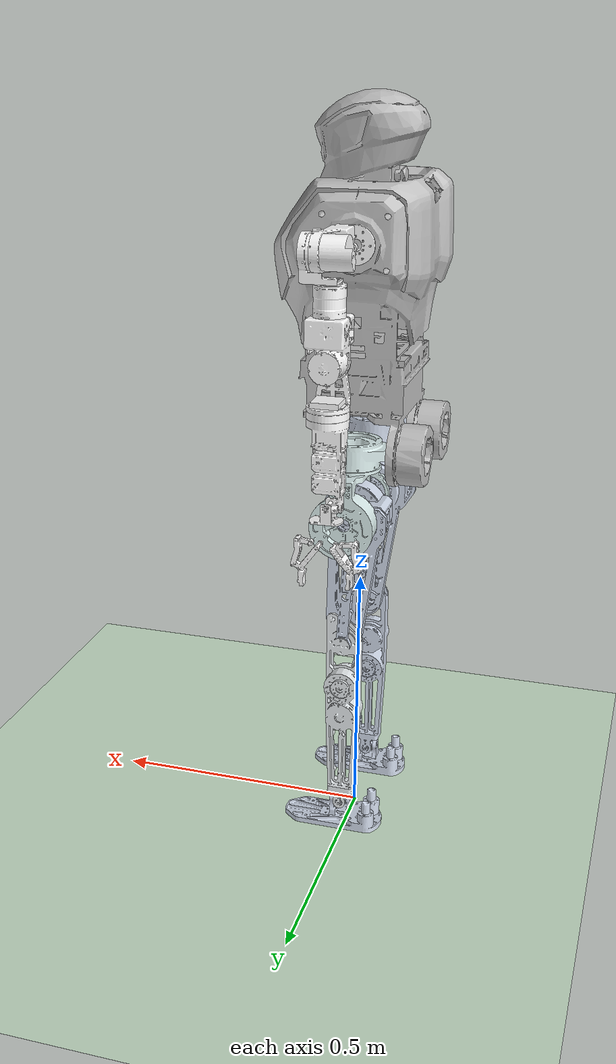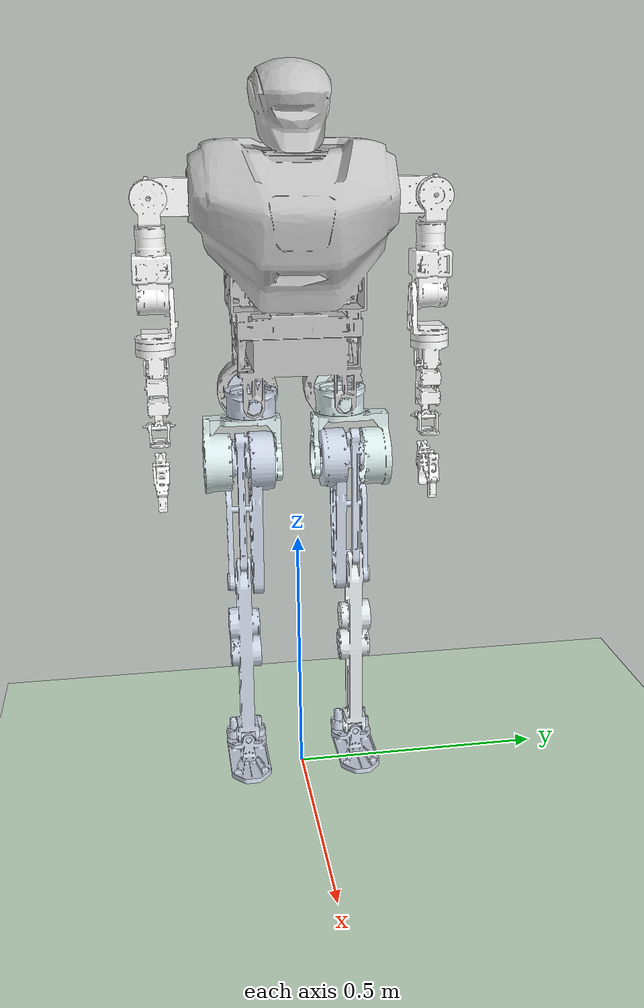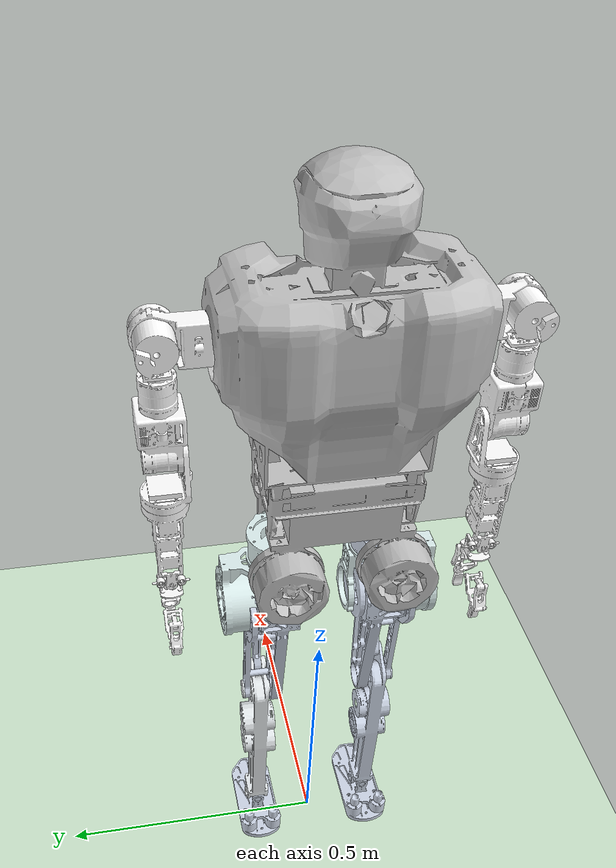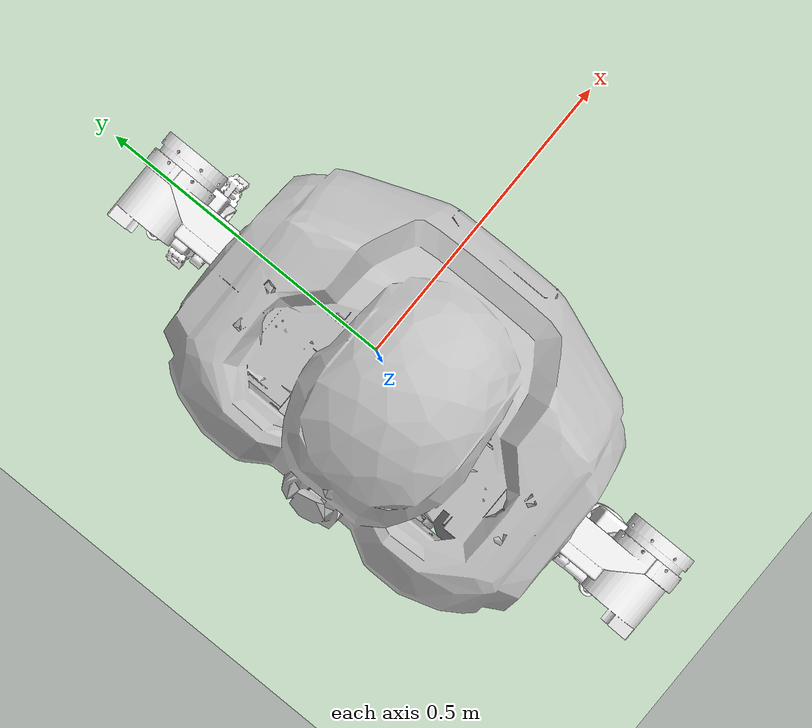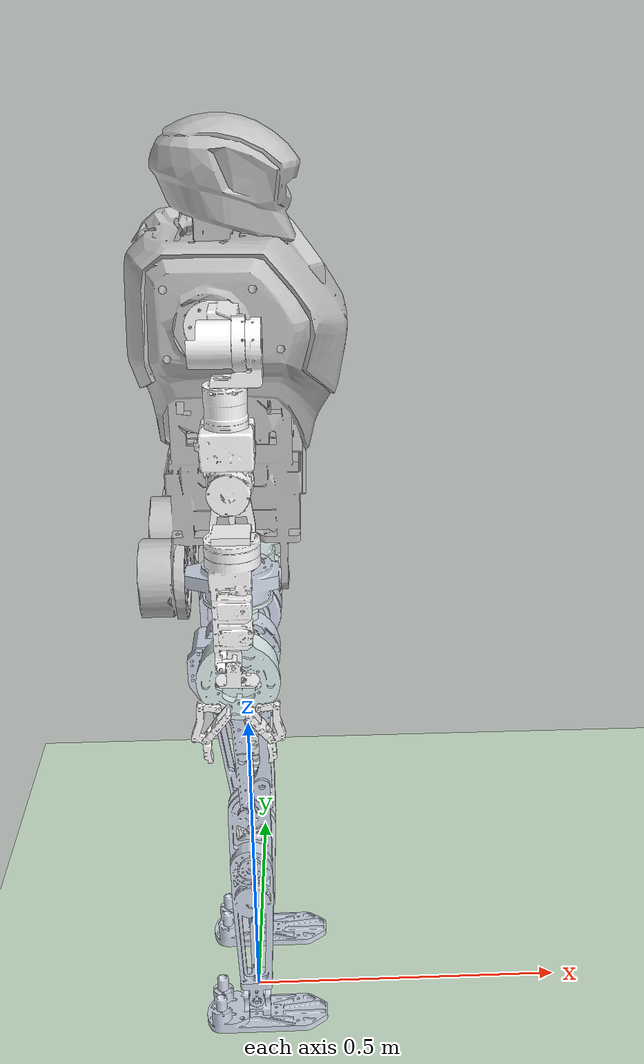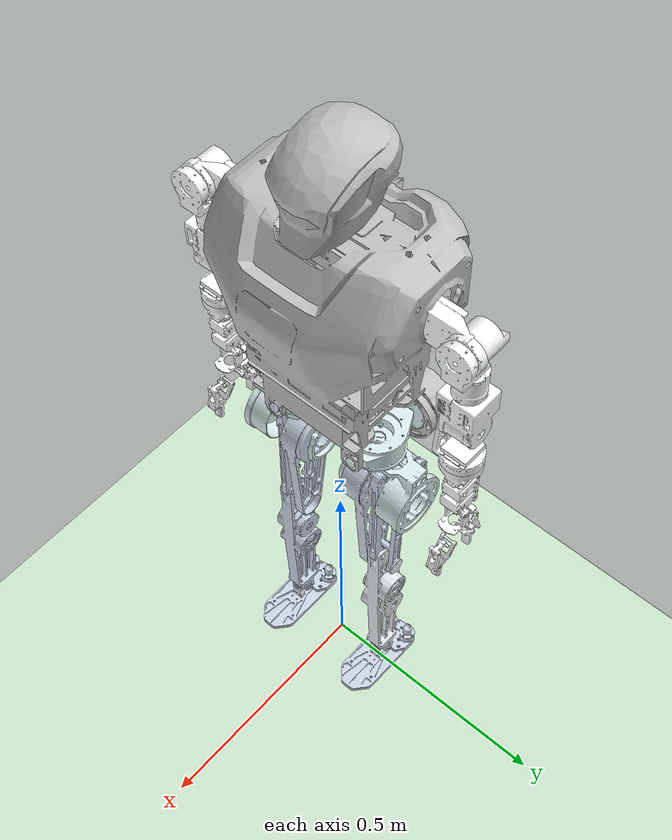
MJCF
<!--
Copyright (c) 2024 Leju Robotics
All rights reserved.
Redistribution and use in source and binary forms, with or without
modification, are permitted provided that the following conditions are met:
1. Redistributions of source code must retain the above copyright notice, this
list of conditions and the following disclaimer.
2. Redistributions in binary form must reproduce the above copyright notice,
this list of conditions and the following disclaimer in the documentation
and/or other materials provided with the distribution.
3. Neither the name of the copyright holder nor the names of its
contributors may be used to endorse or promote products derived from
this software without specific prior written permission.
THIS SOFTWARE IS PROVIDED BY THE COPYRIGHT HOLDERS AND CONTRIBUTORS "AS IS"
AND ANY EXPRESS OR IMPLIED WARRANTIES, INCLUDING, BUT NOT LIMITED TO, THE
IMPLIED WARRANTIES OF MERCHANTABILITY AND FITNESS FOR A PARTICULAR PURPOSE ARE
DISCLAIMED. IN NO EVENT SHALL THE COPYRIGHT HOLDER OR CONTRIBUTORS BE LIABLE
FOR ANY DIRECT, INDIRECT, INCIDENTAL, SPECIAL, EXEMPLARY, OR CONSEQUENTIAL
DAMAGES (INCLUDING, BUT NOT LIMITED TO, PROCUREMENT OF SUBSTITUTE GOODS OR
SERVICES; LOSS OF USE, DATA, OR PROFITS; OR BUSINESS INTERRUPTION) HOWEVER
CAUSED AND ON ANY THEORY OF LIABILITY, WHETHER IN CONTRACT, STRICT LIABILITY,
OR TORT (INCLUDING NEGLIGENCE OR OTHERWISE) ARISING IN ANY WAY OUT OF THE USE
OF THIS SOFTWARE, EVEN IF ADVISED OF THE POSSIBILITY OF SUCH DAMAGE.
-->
<mujoco model="kuavo">
    <compiler angle="radian" meshdir="meshes/"/>
    <size njmax="500" nconmax="100" />

    <default>
        <default class="kuavo">
          <geom type="mesh"/>
          <joint damping="1" armature="0.1"/>
          <default class="visual">
            <geom contype="0" conaffinity="0" group="0" material="black"/>
          </default>
          <default class="collision">
            <geom group="1" mass="0" density="0"/>
          </default>
          <site size="0.001" rgba="0.5 0.5 0.5 0.3" group="4"/>
        </default>
        <motor ctrllimited="true" ctrlrange="-0.95 0.95"/>
    </default>

    <statistic meansize="0.184451" extent="1.17263" center="0.0045332 6.59129e-07 -0.196869"/>

    <asset>
        <mesh name="base_link" file="base_link.STL" />
        <mesh name="l_leg_roll" file="l_leg_roll.STL" />
        <mesh name="l_leg_yaw" file="l_leg_yaw.STL" />
        <mesh name="l_leg_pitch" file="l_leg_pitch.STL" />
        <mesh name="l_knee" file="l_knee.STL" />
        <mesh name="l_foot_pitch" file="l_foot_pitch.STL" />
        <mesh name="l_foot_roll" file="l_foot_roll.STL" />
        <mesh name="l_l_bar" file="l_l_bar.STL" />

        <mesh name="r_leg_roll" file="r_leg_roll.STL" />
        <mesh name="r_leg_yaw" file="r_leg_yaw.STL" />
        <mesh name="r_leg_pitch" file="r_leg_pitch.STL" />
        <mesh name="r_knee" file="r_knee.STL" />
        <mesh name="r_foot_pitch" file="r_foot_pitch.STL" />
        <mesh name="r_foot_roll" file="r_foot_roll.STL" />
        <mesh name="r_r_bar" file="r_r_bar.STL" />

        <mesh name="l_arm_pitch" file="l_arm_pitch.STL" />
        <mesh name="l_arm_roll" file="l_arm_roll.STL" />
        <mesh name="l_arm_yaw" file="l_arm_yaw.STL" />
        <mesh name="l_forearm_pitch" file="l_forearm_pitch.STL" />
        <mesh name="l_forearm_yaw" file="l_forearm_yaw.STL" />
        <mesh name="l_hand_roll" file="l_hand_roll.STL" />
        <mesh name="l_hand_pitch" file="l_hand_pitch.STL" />

        <mesh name="r_arm_pitch" file="r_arm_pitch.STL" />
        <mesh name="r_arm_roll" file="r_arm_roll.STL" />
        <mesh name="r_arm_yaw" file="r_arm_yaw.STL" />
        <mesh name="r_forearm_pitch" file="r_forearm_pitch.STL" />
        <mesh name="r_forearm_yaw" file="r_forearm_yaw.STL" />
        <mesh name="r_hand_roll" file="r_hand_roll.STL" />
        <mesh name="r_hand_pitch" file="r_hand_pitch.STL" />

        <mesh name="real_camera_link" file="real_camera_link.STL" />

        <texture builtin="gradient" height="100" rgb1=".4 .5 .6" rgb2="0 0 0" type="skybox" width="100"/>
        <texture name="texplane" type="2d" builtin="checker" rgb1=".2 .3 .4" rgb2=".1 0.15 0.2" width="100" height="100"/>
        <material name="MatPlane" reflectance="0.5" texture="texplane" texrepeat="1 1" texuniform="true"/>

    </asset>
    <worldbody>

        <geom name="floor" friction="1 .1 .1" pos="0 0 0" size="500 500 0.125" type="plane" material="MatPlane" condim="3" conaffinity="1" contype="1" group="2" rgba="0.8 0.9 0.8 1"></geom>
        <light cutoff="100" diffuse="1 1 1" dir="-0 0 -1.3" directional="true" exponent="1" pos="0 0 1.3" specular=".1 .1 .1" castshadow="false"/>

        <body name="torso" pos="0 0 0.86" childclass="kuavo">

            <inertial pos="0.0089994 4.841e-05 0.0711" quat="0.700523 0.700511 -0.0962969 0.0963229" mass="13.13" diaginertia="0.0478848 0.0430132 0.024162"/>
            <geom type="mesh" contype="0" conaffinity="0" group="1" density="0" rgba="0.75294 0.75294 0.75294 1" mesh="base_link"/>
            <geom type="mesh" rgba="0.75294 0.75294 0.75294 1" mesh="base_link"/>

            <joint name="pelvis_tx" type="slide" pos="0 0 0" axis="       1        0        0" limited="false" range="      -500        500" ref="0" armature="0" damping="0" stiffness="0"></joint>
            <joint name="pelvis_tz" type="slide" pos="0 0 0" axis="       0        1        0" limited="false" range="      -300        300" ref="0" armature="0" damping="0" stiffness="0"></joint>
            <joint name="pelvis_ty" type="slide" pos="0 0 0" axis="       0        0        1" limited="false" range="      -100        200" ref="0" armature="0" damping="0" stiffness="0"></joint>
            <joint name="pelvis_tilt" type="hinge" pos="0 0 0" axis="       0        -1        0" limited="false" range=" -1.5708   1.5708" ref="0" armature="0" damping="0" stiffness="0"></joint>
            <joint name="pelvis_list" type="hinge" pos="0 0 0" axis="       1        0        0" limited="false" range=" -1.5708   1.5708" ref="0" armature="0" damping="0" stiffness="0"></joint>
            <joint name="pelvis_rotation" type="hinge" pos="0 0 0" axis="       0        0        1" limited="false" range=" -1.5708   1.5708" ref="0" armature="0" damping="0" stiffness="0"></joint>

            <body name="l_leg_roll" pos="-0.0756149 0.087 -0.0720755">
                <inertial pos="0.0607643 0.000140341 0.00228372" quat="-0.000667135 0.698074 -0.000633625 0.716025" mass="0.11853" diaginertia="0.000326574 0.000266847 0.000100382" />
                <joint name="l_leg_roll" pos="0 0 0" axis="-1 0 0" />
                <geom type="mesh" rgba="0.862745 0.933333 0.929412 1" mesh="l_leg_roll" />
                <body name="l_leg_yaw" pos="0.0735 0 0.013">
                    <inertial pos="0.000290903 0.0405087 -0.100847" quat="0.711181 0.00318129 -0.0126042 0.702889" mass="0.204053" diaginertia="0.000364139 0.000304318 0.000267233" />
                    <joint name="l_leg_yaw" pos="0 0 0" axis="0 0 1" />
                    <geom type="mesh" rgba="0.862745 0.933333 0.929412 1" mesh="l_leg_yaw" />
                    <body name="l_leg_pitch" pos="0 0.094 -0.13645">
                        <inertial pos="-0.00528236 -0.087885 -0.056801" quat="0.677625 -0.0410299 -0.0428758 0.73301" mass="0.45065" diaginertia="0.00177986 0.0014985 0.000379212" />
                        <joint name="l_leg_pitch" pos="0 0 0" axis="0 -1 0" />
                        <geom type="mesh" rgba="0.807843 0.843137 0.905882 1" mesh="l_leg_pitch" />
                        <body name="l_knee" pos="0.00413596 -0.068639 -0.249966">
                            <inertial pos="0.000868874 -5.03011e-05 -0.133147" quat="0.708076 0.000612423 0.00689893 0.706102" mass="0.817175" diaginertia="0.00810869 0.00786468 0.00043979" />
                            <joint name="l_knee" pos="0 0 0" axis="0 1 0" />
                            <geom type="mesh" rgba="0.898039 0.917647 0.929412 1" mesh="l_knee" />
                            <body name="l_foot_pitch" pos="9.39839e-05 0.021 -0.346142">
                                <inertial pos="-2.20949e-07 -0.0210002 0.000142422" quat="0.5 0.500027 -0.5 0.499973" mass="0.00898869" diaginertia="1.52124e-06 8.64758e-07 8.64758e-07" />
                                <joint name="l_foot_pitch" pos="0 0 0" axis="0 -1 0" />
                                <geom type="mesh" rgba="0.807843 0.843137 0.905882 1" mesh="l_foot_pitch" />
                                <body name="l_foot_roll" pos="0.021 -0.021 0.000142422">
                                    <inertial pos="-0.0432253 -8.83109e-06 -0.02319" quat="5.30343e-05 0.70865 2.4785e-05 0.70556" mass="0.485953" diaginertia="0.000765599 0.000645275 0.000157862" />
                                    <joint name="l_foot_roll" pos="0 0 0" axis="-1 0 0" />
                                    <geom name="left_foot" type="mesh" rgba="0.807843 0.843137 0.905882 1" mesh="l_foot_roll" />
                                </body>
                            </body>

                        </body>
                    </body>
                </body>
            </body>
            <body name="r_leg_roll" pos="-0.0756149 -0.087 -0.0720755">
                <inertial pos="0.0607646 -0.000140366 0.00228377" quat="0.000666594 0.698074 0.000634567 0.716025" mass="0.118531" diaginertia="0.000326578 0.000266849 0.000100382" />
                <joint name="r_leg_roll" pos="0 0 0" axis="-1 0 0" />
                <geom type="mesh" rgba="0.807843 0.843137 0.905882 1" mesh="r_leg_roll" />
                <body name="r_leg_yaw" pos="0.0735 0 0.013">
                    <inertial pos="0.000290902 -0.0405087 -0.100847" quat="0.702889 -0.0126041 0.00318137 0.711181" mass="0.204052" diaginertia="0.000364139 0.000304315 0.000267229" />
                    <joint name="r_leg_yaw" pos="0 0 0" axis="0 0 1" />
                    <geom type="mesh" rgba="0.862745 0.933333 0.929412 1" mesh="r_leg_yaw" />
                    <body name="r_leg_pitch" pos="0 -0.094 -0.13645">
                        <inertial pos="-0.00530845 0.0879625 -0.0562054" quat="0.732997 -0.0428762 -0.0410294 0.677639" mass="0.44854" diaginertia="0.00177981 0.0014983 0.000379015" />
                        <joint name="r_leg_pitch" pos="0 0 0" axis="0 -1 0" />
                        <geom type="mesh" rgba="0.807843 0.843137 0.905882 1" mesh="r_leg_pitch" />
                        <body name="r_knee" pos="0.00413596 0.06855 -0.249966">
                            <inertial pos="0.000566316 -0.000357175 -0.138852" quat="0.706218 0.00688574 0.000625585 0.707961" mass="0.345444" diaginertia="0.00291148 0.0028134 0.000171445" />
                            <joint name="r_knee" pos="0 0 0" axis="0 -1 0" />
                            <geom type="mesh" rgba="0.807843 0.843137 0.905882 1" mesh="r_knee" />
                            <body name="r_foot_pitch" pos="0 -0.021 -0.346">
                                <inertial pos="-2.20949e-07 0.0210002 0" quat="-1.85672e-05 0.707088 -1.85662e-05 0.707126" mass="0.00898869" diaginertia="1.52124e-06 8.64758e-07 8.64758e-07" />
                                <joint name="r_foot_pitch" pos="0 0 0" axis="0 -1 0" />
                                <geom type="mesh" rgba="0.807843 0.843137 0.905882 1" mesh="r_foot_pitch" />
                                <body name="r_foot_roll" pos="0.021 0.021 0">
                                    <inertial pos="-0.0480333 6.50582e-06 -0.02084" quat="-6.19557e-05 0.711387 -6.76251e-06 0.7028" mass="0.235882" diaginertia="0.000291968 0.000241939 7.44384e-05" />
                                    <joint name="r_foot_roll" pos="0 0 0" axis="-1 0 0" />
                                    <geom name="right_foot" type="mesh" rgba="0.807843 0.843137 0.905882 1" mesh="r_foot_roll" />
                                </body>
                            </body>

                        </body>
                    </body>
                </body>
            </body>
            <body name="l_arm_pitch" pos="-0.0174999 0.121 0.3145">
                <inertial pos="0.0214306 0.0894803 0.000615913" quat="0.690244 0.700764 -0.132609 -0.122102" mass="0.0855565" diaginertia="0.000141313 0.000113847 5.66277e-05" />
                <joint name="l_arm_pitch" pos="0 0 0" axis="0 1 0" />
                <geom type="mesh" rgba="1 1 1 1" mesh="l_arm_pitch" />
                <body name="l_arm_roll" pos="0.063875 0.143475 0">
                    <inertial pos="-0.0357371 0.000637394 -0.00293587" quat="0.570293 0.472009 0.424418 0.521385" mass="0.243859" diaginertia="0.000190717 0.000180988 0.000125678" />
                    <joint name="l_arm_roll" pos="0 0 0" axis="-1 0 0" />
                    <geom type="mesh" rgba="1 1 1 1" mesh="l_arm_roll" />
                    <body name="l_arm_yaw" pos="-0.0436733 -0.000228545 -0.05075">
                        <inertial pos="-0.000196755 -0.00200222 -0.0822364" quat="0.548161 0.437539 0.5566 0.445282" mass="0.231646" diaginertia="0.00011681 0.000101716 7.15645e-05" />
                        <joint name="l_arm_yaw" pos="0 0 0" axis="0 0.0045033 0.99999" />
                        <geom type="mesh" rgba="1 1 1 1" mesh="l_arm_yaw" />
                        <body name="l_forearm_pitch" pos="0 -0.0300215 -0.1357">
                            <inertial pos="-1.76622e-09 0.0247675 -0.0702639" quat="0.623577 0.333394 -0.333394 0.623577" mass="0.100718" diaginertia="8.21427e-05 6.81753e-05 5.56701e-05" />
                            <joint name="l_forearm_pitch" pos="0 0 0" axis="0 1 0" />
                            <geom type="mesh" rgba="1 1 1 1" mesh="l_forearm_pitch" />
                            <body name="l_forearm_yaw" pos="0 0.03025 -0.09155">
                                <inertial pos="-0.0039957 2.98471e-05 -0.0656134" quat="0.678025 0.101156 0.103918 0.72059" mass="0.156174" diaginertia="7.29263e-05 7.03136e-05 6.86619e-05" />
                                <joint name="l_forearm_yaw" pos="0 0 0" axis="0 0 -1" />
                                <geom type="mesh" rgba="1 1 1 1" mesh="l_forearm_yaw" />
                                <body name="l_hand_roll" pos="-0.025322 0 -0.1575">
                                    <inertial pos="0.0166011 1.21699e-07 1.73724e-07" quat="0.499997 0.500003 -0.499991 0.500009" mass="0.0022508" diaginertia="3.17251e-07 1.93487e-07 1.36599e-07" />
                                    <joint name="l_hand_roll" pos="0 0 0" axis="-1 0 0" />
                                    <geom type="mesh" rgba="1 1 1 1" mesh="l_hand_roll" />
                                    <body name="l_hand_pitch" pos="0.02137 0 0">
                                        <inertial pos="0.00216453 -6.7772e-05 -0.0859772" quat="0.998994 -0.000113618 -0.0448503 -0.000374344" mass="0.0531311" diaginertia="1.14326e-05 1.10991e-05 8.16595e-06" />
                                        <joint name="l_hand_pitch" pos="0 0 0" axis="-1 0 0" />
                                        <geom type="mesh" rgba="1 1 1 1" mesh="l_hand_pitch" />
                                    </body>
                                </body>
                            </body>
                        </body>
                    </body>
                </body>
            </body>
            <body name="r_arm_pitch" pos="-0.0174999 -0.126 0.3145">
                <inertial pos="0.0214306 -0.0844803 0.000615815" quat="0.700765 0.690243 0.122102 0.132609" mass="0.0855565" diaginertia="0.000141313 0.000113847 5.66277e-05" />
                <joint name="r_arm_pitch" pos="0 0 0" axis="0 -1 0" />
                <geom type="mesh" rgba="1 1 1 1" mesh="r_arm_pitch" />
                <body name="r_arm_roll" pos="0.063875 -0.138475 0">
                    <inertial pos="-0.0357371 -0.000637395 -0.00293588" quat="0.521385 0.424419 0.472009 0.570293" mass="0.243859" diaginertia="0.000190717 0.000180988 0.000125678" />
                    <joint name="r_arm_roll" pos="0 0 0" axis="-1 0 0" />
                    <geom type="mesh" rgba="1 1 1 1" mesh="r_arm_roll" />
                    <body name="r_arm_yaw" pos="-0.043675 0 -0.04975">
                        <inertial pos="-0.00019498 0.00223075 -0.0832363" quat="0.445265 0.556616 0.437542 0.548156" mass="0.231646" diaginertia="0.000116808 0.000101716 7.15629e-05" />
                        <joint name="r_arm_yaw" pos="0 0 0" axis="0 0 -1" />
                        <geom type="mesh" rgba="1 1 1 1" mesh="r_arm_yaw" />
                        <body name="r_forearm_pitch" pos="0 0.03025 -0.1377">
                            <inertial pos="7.18032e-09 -0.0235363 -0.0656063" quat="0.301411 0.63965 -0.63965 0.301411" mass="0.0822469" diaginertia="7.29226e-05 6.24507e-05 4.80184e-05" />
                            <joint name="r_forearm_pitch" pos="0 0 0" axis="0 -1 0" />
                            <geom type="mesh" rgba="1 1 1 1" mesh="r_forearm_pitch" />
                            <body name="r_forearm_yaw" pos="0 -0.03025 -0.09055">
                                <inertial pos="-0.00399572 -2.98574e-05 -0.0656134" quat="0.720573 0.103927 0.101145 0.678044" mass="0.156174" diaginertia="7.29262e-05 7.03134e-05 6.86618e-05" />
                                <joint name="r_forearm_yaw" pos="0 0 0" axis="0 0 1" />
                                <geom type="mesh" rgba="1 1 1 1" mesh="r_forearm_yaw" />
                                <body name="r_hand_roll" pos="-0.025322 0 -0.1575">
                                    <inertial pos="0.0166011 -1.21915e-07 -1.70258e-07" quat="0.500009 0.499991 -0.500003 0.499997" mass="0.0022508" diaginertia="3.17251e-07 1.93487e-07 1.36599e-07" />
                                    <joint name="r_hand_roll" pos="0 0 0" axis="-1 0 0" />
                                    <geom type="mesh" rgba="1 1 1 1" mesh="r_hand_roll" />
                                    <body name="r_hand_pitch" pos="0.02137 0 0">
                                        <inertial pos="0.00214702 -7.83584e-05 -0.0852819" quat="0.998994 0.000113179 -0.0448503 0.000379504" mass="0.0535643" diaginertia="1.14384e-05 1.11096e-05 8.17174e-06" />
                                        <joint name="r_hand_pitch" pos="0 0 0" axis="0 1 0" />
                                        <geom type="mesh" rgba="1 1 1 1" mesh="r_hand_pitch" />
                                    </body>
                                </body>
                            </body>
                        </body>
                    </body>
                </body>
            </body>

        </body>

    </worldbody>

    <actuator>
        <motor name="l_leg_roll_actuator"  joint="l_leg_roll" gear="48"/>
        <motor name="l_leg_yaw_actuator"  joint="l_leg_yaw" gear="37.44"/>
        <motor name="l_leg_pitch"  joint="l_leg_pitch" gear="69.6"/>
        <motor name="l_knee_actuator"  joint="l_knee" gear="69.6"/>
        <motor name="l_foot_pitch_actuator"  joint="l_foot_pitch" gear="43.05"/>
        <motor name="l_foot_roll_actuator"  joint="l_foot_roll" gear="43.05"/>

        <motor name="r_leg_roll_actuator"  joint="r_leg_roll" gear="48"/>
        <motor name="r_leg_yaw_actuator"  joint="r_leg_yaw" gear="37.44"/>
        <motor name="r_leg_pitch_actuator"  joint="r_leg_pitch" gear="69.6"/>
        <motor name="r_knee_actuator"  joint="r_knee" gear="69.6"/>
        <motor name="r_foot_pitch_actuator"  joint="r_foot_pitch" gear="43.05"/>
        <motor name="r_foot_roll_actuator"  joint="r_foot_roll" gear="43.05"/>

        <motor name="l_arm_pitch_actuator"  joint="l_arm_pitch" gear="50.568"/>
        <motor name="l_arm_roll_actuator"  joint="l_arm_roll" gear="80"/>
        <motor name="l_arm_yaw_actuator"  joint="l_arm_yaw" gear="43.05"/>
        <motor name="l_forearm_pitch_actuator"  joint="l_forearm_pitch" gear="43.05"/>
        <motor name="l_forearm_yaw_actuator"  joint="l_forearm_yaw" gear="4"/>
        <motor name="l_hand_roll_actuator"  joint="l_hand_roll" gear="4"/>
        <motor name="l_hand_pitch_actuator"  joint="l_hand_pitch" gear="4"/>

        <motor name="r_arm_pitch_actuator"  joint="r_arm_pitch" gear="50.568"/>
        <motor name="r_arm_roll_actuator"  joint="r_arm_roll" gear="80"/>
        <motor name="r_arm_yaw_actuator"  joint="r_arm_yaw" gear="43.05"/>
        <motor name="r_forearm_pitch_actuator"  joint="r_forearm_pitch" gear="43.05"/>
        <motor name="r_forearm_yaw_actuator"  joint="r_forearm_yaw" gear="4"/>
        <motor name="r_hand_roll_actuator"  joint="r_hand_roll" gear="4"/>
        <motor name="r_hand_pitch_actuator"  joint="r_hand_pitch" gear="4"/>

    </actuator>
</mujoco>
